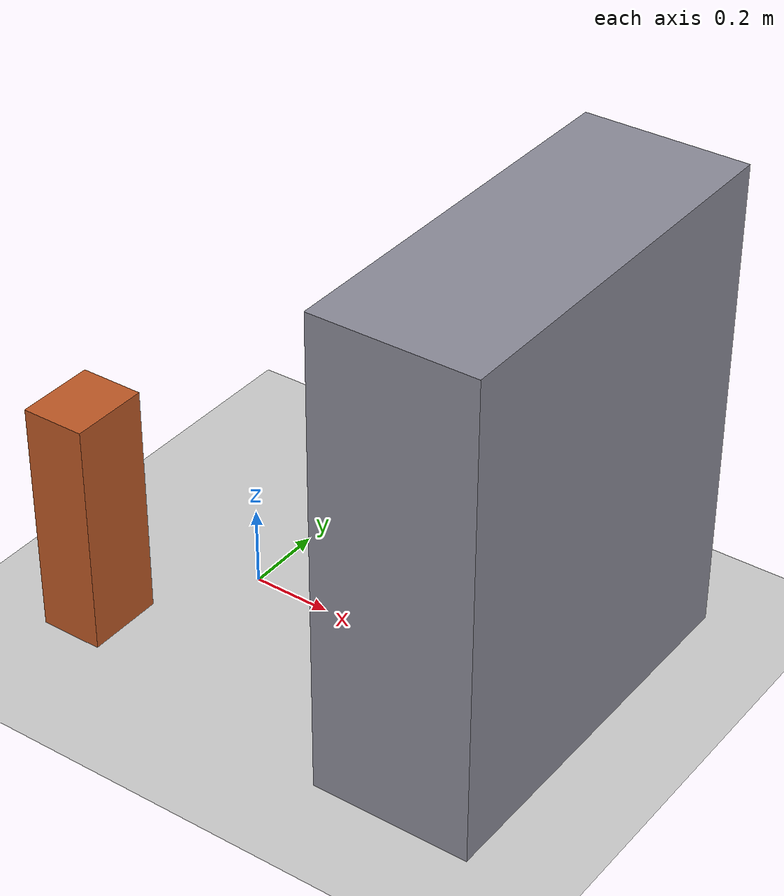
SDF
<?xml version="1.0" ?>
<sdf version="1.8">
  <world name="arm_barrier_test">
    <physics name="1ms" type="ignored">
      <max_step_size>0.001</max_step_size>
      <real_time_factor>1.0</real_time_factor>
    </physics>
    <plugin filename="gz-sim-physics-system" name="gz::sim::systems::Physics"/>
    <plugin filename="gz-sim-user-commands-system" name="gz::sim::systems::UserCommands"/>
    <plugin filename="gz-sim-scene-broadcaster-system" name="gz::sim::systems::SceneBroadcaster"/>
    <plugin filename="gz-sim-sensors-system" name="gz::sim::systems::Sensors">
      <render_engine>ogre2</render_engine>
    </plugin>

    <model name="obs_1">
      <static>true</static>
      <pose>-0.2250 -0.3200 0.3000 0 0 0</pose>
      <link name="link">
        <collision name="c">
          <geometry><box><size>0.1600 0.2000 0.6000</size></box></geometry>
        </collision>
        <visual name="v">
          <geometry><box><size>0.1600 0.2000 0.6000</size></box></geometry>
          <material><ambient>0.75 0.35 0.15 1</ambient>
                    <diffuse>0.75 0.35 0.15 1</diffuse></material>
        </visual>
      </link>
    </model>

    <model name="demo_camera">
      <static>true</static>
      <pose>0.15 -1.55 0.95 0 0.2506 1.4425</pose>
      <link name="link">
        <sensor name="demo_cam" type="camera">
          <camera>
            <horizontal_fov>1.05</horizontal_fov>
            <image><width>800</width><height>600</height><format>R8G8B8</format></image>
            <clip><near>0.05</near><far>20</far></clip>
          </camera>
          <always_on>1</always_on>
          <update_rate>20</update_rate>
          <topic>demo_cam</topic>
        </sensor>
      </link>
    </model>

    <light type="directional" name="sun">
      <cast_shadows>true</cast_shadows>
      <pose>0 0 10 0 0 0</pose>
      <diffuse>0.8 0.8 0.8 1</diffuse>
      <specular>0.2 0.2 0.2 1</specular>
      <direction>-0.5 0.1 -0.9</direction>
    </light>

    <model name="ground_plane">
      <static>true</static>
      <link name="link">
        <collision name="collision">
          <geometry><plane><normal>0 0 1</normal><size>20 20</size></plane></geometry>
        </collision>
        <visual name="visual">
          <geometry><plane><normal>0 0 1</normal><size>20 20</size></plane></geometry>
          <material>
            <ambient>0.75 0.75 0.75 1</ambient>
            <diffuse>0.8 0.8 0.8 1</diffuse>
          </material>
        </visual>
      </link>
    </model>

    <model name="obs_0">
      <static>true</static>
      <pose>0.7400 0.0000 0.6000 0 0 0</pose>
      <link name="link">
        <collision name="collision">
          <geometry><box><size>0.4000 1.0000 1.2000</size></box></geometry>
        </collision>
        <visual name="visual">
          <geometry><box><size>0.4000 1.0000 1.2000</size></box></geometry>
          <material>
            <ambient>0.45 0.45 0.5 1</ambient>
            <diffuse>0.55 0.55 0.6 1</diffuse>
          </material>
        </visual>
      </link>
    </model>
  </world>
</sdf>
